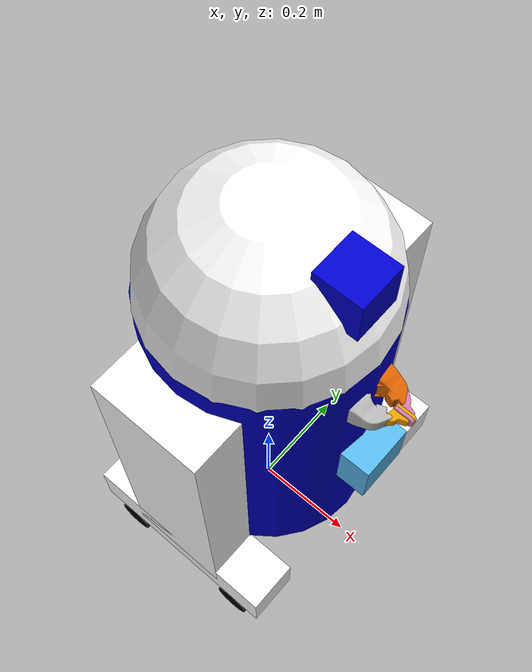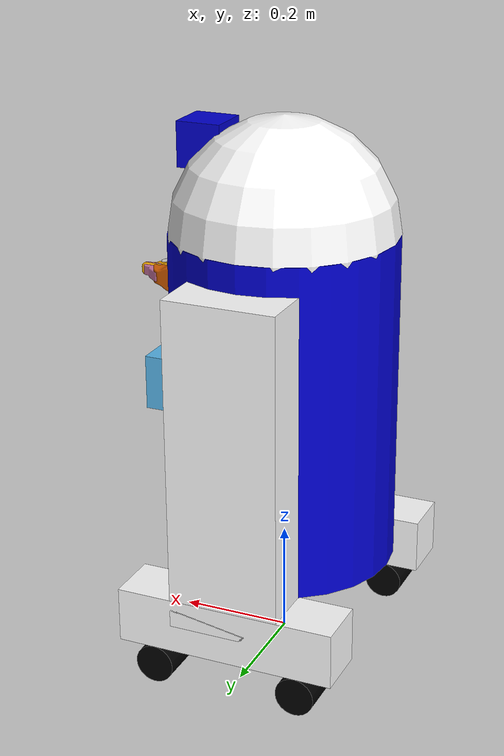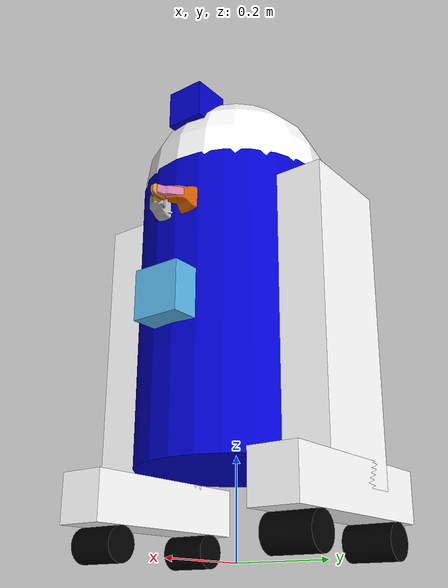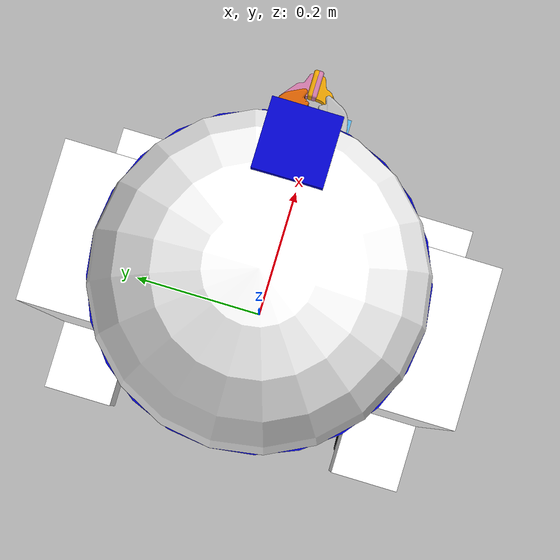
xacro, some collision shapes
<?xml version="1.0"?>
<robot xmlns:xacro="http://ros.org/wiki/xacro" name="r2d2">
	<!--
		This file loads a basic visualization of r2d2 and its structure
 	-->
	<xacro:include filename="$(find r2d2_description)/urdf/r2d2.structure.xacro" />

	<link name="base_link" />

	<xacro:r2d2_structure name="r2d2_structure" parent_link="base_link"/>

</robot>

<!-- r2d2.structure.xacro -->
<robot xmlns:xacro="http://ros.org/wiki/xacro">

	<xacro:include filename="$(find r2d2_description)/urdf/r2d2.gazebo.xacro" />
	<xacro:include filename="$(find r2d2_description)/urdf/r2d2.materials.xacro" />
	<xacro:include filename="$(find r2d2_description)/urdf/r2d2.inertia.xacro" />
	<xacro:include filename="$(find r2d2_description)/urdf/r2d2.head.xacro" />
	<xacro:include filename="$(find r2d2_description)/urdf/r2d2.leg.xacro" />
	<xacro:include filename="$(find r2d2_description)/urdf/r2d2.wheel.xacro" />
	<xacro:include filename="$(find r2d2_description)/urdf/r2d2.gripper.xacro" />
	<xacro:include filename="$(find r2d2_description)/urdf/r2d2.gripper_finger.xacro" />
	<xacro:include filename="$(find r2d2_description)/urdf/r2d2.laser.xacro" />

	<xacro:property name="torsowidth" value=".2" />
	<xacro:property name="leglen" value=".6" />
	<xacro:property name="polelen" value=".2" />
	<xacro:property name="torsolen" value=".6" />
	<xacro:property name="baselen" value=".4" />
	<xacro:property name="basewidth" value=".1" />
	<xacro:property name="wheeldiam" value=".07" />
	<xacro:property name="pi" value="3.1415" />

	<xacro:macro name="r2d2_structure" params="name parent_link">

		<link name="torso">
			<visual>
				<geometry>
					<cylinder radius="${torsowidth}" length="${torsolen}"/>
				</geometry>
				<material name="Blue"/>
			</visual>
			<collision>
				<geometry>
					<cylinder radius="${torsowidth}" length="${torsolen}"/>
				</geometry>
			</collision>
	 		<xacro:default_inertial mass="10"/>
		</link>
		<xacro:gazebo_material link="torso" color="Blue"/>

		<joint name="${parent_link}_torso_joint" type="fixed">
			<origin xyz="0 0 ${torsolen/2.0 + basewidth + wheeldiam}" rpy="0 0 0" />
			<parent link="${parent_link}" />
			<child link="torso" />
		</joint>

		<xacro:head name="head" parent_link="torso" />

		<xacro:leg name="leg" parent_link="torso" prefix="right" reflect="-1" />
		<xacro:leg name="leg" parent_link="torso" prefix="left" reflect="1" />

		<xacro:gripper name="gripper" parent_link="torso" />

		<xacro:laser name="hokuyo_laser" parent_link="torso" />

	</xacro:macro>

</robot>

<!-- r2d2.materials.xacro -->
<robot xmlns:xacro="http://ros.org/wiki/xacro">

	<material name="Black">
		<color rgba="0.0 0.0 0.0 1.0"/>
	</material>

	<material name="Blue">
		<color rgba="0.0 0.0 0.8 1.0"/>
	</material>

	<material name="Green">
		<color rgba="0.0 0.8 0.0 1.0"/>
	</material>

	<material name="Grey">
		<color rgba="0.7 0.7 0.7 1.0"/>
	</material>

	<material name="DarkGrey">
		<color rgba="0.3 0.3 0.3 1.0"/>
	</material>

	<material name="Red">
		<color rgba="0.8 0.0 0.0 1.0"/>
	</material>

	<material name="White">
		<color rgba="1.0 1.0 1.0 1.0"/>
	</material>

	<material name="Yellow">
		<color rgba="0.8 0.8 0.0 1.0"/>
	</material>

</robot>

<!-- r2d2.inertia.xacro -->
<robot xmlns:xacro="http://ros.org/wiki/xacro">

	<xacro:macro name="default_inertial" params="mass">
		<inertial>
			<mass value="${mass}" />
			<inertia ixx="1.0" ixy="0.0" ixz="0.0" iyy="1.0" iyz="0.0" izz="1.0" />
		</inertial>
	</xacro:macro>

</robot>

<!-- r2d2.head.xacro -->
<robot xmlns:xacro="http://ros.org/wiki/xacro">

	<xacro:macro name="head" params="name parent_link">

		<link name="head">
			<visual>
				<geometry>
					<sphere radius="${torsowidth}"/>
				</geometry>
				<material name="White"/>
			</visual>
			<collision>
				<geometry>
					<sphere radius="${torsowidth}"/>
				</geometry>
			</collision>
			<xacro:default_inertial mass="2"/>
		</link>
		<xacro:gazebo_material link="head" color="White"/>

		<link name="box">
			<visual>
				<geometry>
					<box size=".08 .08 .08"/>
				</geometry>
				<material name="Blue"/>
				<origin xyz="-0.04 0 0"/>
			</visual>
			<collision>
				<geometry>
					<box size=".08 .08 .08"/>
				</geometry>
			</collision>
			<xacro:default_inertial mass="1"/>
		</link>
		<xacro:gazebo_material link="box" color="Blue"/>

		<joint name="${parent_link}_head_joint" type="continuous">
			<parent link="${parent_link}"/>
			<child link="head"/>
			<axis xyz="0 0 1"/>
			<origin xyz="0 0 ${torsolen/2}"/>
			<limit effort="30" velocity="1.0"/>
			<dynamics damping="0.0" friction="0.0"/>
		</joint>

		<joint name="head_box_joint" type="fixed">
			<parent link="head"/>
			<child link="box"/>
			<origin xyz="${.707*torsowidth+0.04} 0 ${.707*torsowidth}"/>
		</joint>

		<!-- This block connects the ${parent_link}_head_joint to an actuator (motor), which informs both
		simulation and visualization of the robot -->
		<transmission name="head_trans" type="SimpleTransmission">
			<type>transmission_interface/SimpleTransmission</type>
			<joint name="${parent_link}_head_joint">
				<hardwareInterface>PositionJointInterface</hardwareInterface>
				<mechanicalReduction>1</mechanicalReduction>
			</joint>

			<actuator name="$head_swivel_motor">
				<hardwareInterface>EffortJointInterface</hardwareInterface>
				<mechanicalReduction>1</mechanicalReduction>
			</actuator>
		</transmission>

	</xacro:macro>

</robot>

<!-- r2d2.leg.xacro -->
<robot xmlns:xacro="http://ros.org/wiki/xacro">

	<xacro:macro name="leg" params="name parent_link prefix reflect">

		<link name="${prefix}_leg">
			<visual>
				<geometry>
					<box size="${leglen} .1 .2"/>
				</geometry>
				<origin xyz="0 0 -${leglen/2}" rpy="0 ${pi/2} 0"/>
				<material name="White"/>
			</visual>
			<collision>
				<geometry>
					<box size="${leglen} .1 .2"/>
				</geometry>
				<origin xyz="0 0 -${leglen/2}" rpy="0 ${pi/2} 0"/>
			</collision>
			<xacro:default_inertial mass="2"/>
		</link>
		<xacro:gazebo_material link="${prefix}_leg" color="White"/>

		<link name="${prefix}_leg_base">
			<visual>
				<geometry>
					<box size="${baselen} ${basewidth} ${basewidth}"/>
				</geometry>
				<material name="White"/>
			</visual>
			<collision>
				<geometry>
					<box size="${baselen} ${basewidth} ${basewidth}"/>
				</geometry>
			</collision>
			<xacro:default_inertial mass="20"/>
		</link>
		<xacro:gazebo_material link="${prefix}_leg_base" color="White"/>

		<joint name="${parent_link}_${prefix}_leg_joint" type="fixed">
			<parent link="${parent_link}"/>
			<child link="${prefix}_leg"/>
			<origin xyz="0 ${reflect*(torsowidth+.02)} .25" />
		</joint>

		<joint name="${prefix}_leg_leg_base_joint" type="fixed">
			<parent link="${prefix}_leg"/>
			<child link="${prefix}_leg_base"/>
			<origin xyz="0 0 ${-leglen}" />
		</joint>

		<xacro:wheel name="wheel" prefix="${prefix}" suffix="front" reflect="1"/>
		<xacro:wheel name="wheel" prefix="${prefix}" suffix="back" reflect="-1"/>

	</xacro:macro>

</robot>

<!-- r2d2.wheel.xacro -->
<robot xmlns:xacro="http://ros.org/wiki/xacro">

	<xacro:macro name="wheel" params="name prefix suffix reflect">

		<link name="${prefix}_${suffix}_wheel">
			<visual>
				<origin xyz="0 0 0" rpy="${pi/2} 0 0" />
				<geometry>
					<cylinder radius="${wheeldiam/2}" length="0.1"/>
				</geometry>
				<material name="Black"/>
				<origin xyz="0 0 0" rpy="0 0 0" />
			</visual>
			<collision>
				<origin xyz="0 0 0" rpy="${pi/2} 0 0" />
				<geometry>
					<cylinder radius="${wheeldiam/2}" length="0.1"/>
				</geometry>
				<origin xyz="0 0 0" rpy="0 0 0" />
			</collision>
			<xacro:default_inertial mass="2"/>
		</link>
		<xacro:gazebo_material link="${prefix}_${suffix}_wheel" color="Black"/>

		<joint name="${prefix}_${suffix}_wheel_joint" type="continuous">
			<axis xyz="0 1 0" rpy="0 0 0" />
			<parent link="${prefix}_leg_base"/>
			<child link="${prefix}_${suffix}_wheel"/>
			<origin xyz="${baselen*reflect/3} 0 -${wheeldiam/2+.05}" rpy="0 0 0"/>
		</joint>

		<!-- This block connects the wheel joint to an actuator (motor), which informs both
		simulation and visualization of the robot -->
		<transmission name="${prefix}_${suffix}_wheel_trans" type="SimpleTransmission">
			<type>transmission_interface/SimpleTransmission</type>
			<joint name="${prefix}_${suffix}_wheel_joint">
				<hardwareInterface>VelocityJointInterface</hardwareInterface>
				<mechanicalReduction>1</mechanicalReduction>
			</joint>

			<actuator name="${prefix}_${suffix}_wheel_motor">
				<hardwareInterface>EffortJointInterface</hardwareInterface>
				<mechanicalReduction>1</mechanicalReduction>
			</actuator>
		</transmission>

	</xacro:macro>

</robot>

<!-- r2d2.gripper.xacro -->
<robot xmlns:xacro="http://ros.org/wiki/xacro">

	<xacro:macro name="gripper" params="name parent_link">

		<link name="gripper_pole">
			<visual>
				<geometry>
					<cylinder length="${polelen}" radius=".01"/>
				</geometry>
				<material name="Grey"/>
				<origin xyz="${polelen/2} 0 0" rpy="0 ${pi/2} 0 "/>
			</visual>
			<collision>
				<geometry>
					<cylinder length="${polelen}" radius=".01"/>
				</geometry>
				<origin xyz="${polelen/2} 0 0" rpy="0 ${pi/2} 0 "/>
			</collision>
			<xacro:default_inertial mass=".05"/>
		</link>
		<xacro:gazebo_material link="gripper_pole" color="Grey"/>

		<joint name="${parent_link}_gripper_pole_joint" type="prismatic">
			<parent link="${parent_link}"/>
			<child link="gripper_pole"/>
			<limit effort="1000.0" lower="-${torsowidth*2-.02}" upper="-0.1" velocity="0.5"/>
			<origin rpy="0 0 0" xyz="${torsowidth-.01} 0 .2"/>
			<limit effort="30" velocity="0.2"/>
			<dynamics damping="0.0" friction="0.0"/>
		</joint>

		<transmission name="gripper_pole_trans" type="SimpleTransmission">
			<type>transmission_interface/SimpleTransmission</type>
			<joint name="${parent_link}_gripper_pole_joint">
				<hardwareInterface>PositionJointInterface</hardwareInterface>
				<mechanicalReduction>1</mechanicalReduction>
			</joint>

			<actuator name="gripper_pole_motor">
				<hardwareInterface>EffortJointInterface</hardwareInterface>
				<mechanicalReduction>1</mechanicalReduction>
			</actuator>
		</transmission>

		<xacro:gripper_finger name="gripper_finger" parent_link="gripper_pole" prefix="left" reflect="1" />
		<xacro:gripper_finger name="gripper_finger" parent_link="gripper_pole" prefix="right" reflect="-1" />

	</xacro:macro>

</robot>

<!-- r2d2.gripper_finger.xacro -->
<robot xmlns:xacro="http://ros.org/wiki/xacro">

	<xacro:macro name="gripper_finger" params="name parent_link prefix reflect">

		<link name="${prefix}_gripper_finger">
			<visual>
				<origin rpy="${(reflect-1)/2*pi} 0 0" xyz="0 0 0"/>
				<geometry>
					<mesh filename="package://pr2_description/meshes/gripper_v0/l_finger.dae"/>
				</geometry>
			</visual>
			<collision>
				<geometry>
					<mesh filename="package://pr2_description/meshes/gripper_v0/l_finger.dae"/>
				</geometry>
				<origin rpy="${(reflect-1)/2*pi} 0 0" xyz="0 0 0"/>
			</collision>
			<xacro:default_inertial mass=".05"/>
		</link>

		<link name="${prefix}_gripper_finger_tip">
			<visual>
				<origin rpy="${(reflect-1)/2*pi} 0 0" xyz="0.09137 0.00495 0"/>
				<geometry>
					<mesh filename="package://pr2_description/meshes/gripper_v0/l_finger_tip.dae"/>
				</geometry>
			</visual>
			<collision>
				<geometry>
					<mesh filename="package://pr2_description/meshes/gripper_v0/l_finger_tip.dae"/>
				</geometry>
				<origin rpy="${(reflect-1)/2*pi} 0 0" xyz="0.09137 0.00495 0"/>
			</collision>
			<xacro:default_inertial mass=".05"/>
		</link>

		<joint name="${prefix}_gripper_finger_joint" type="revolute">
			<axis xyz="0 0 ${reflect}"/>
			<limit effort="1000.0" lower="0.0" upper="0.548" velocity="0.5"/>
			<origin rpy="0 0 0" xyz="${polelen} ${reflect*0.01} 0"/>
			<parent link="${parent_link}"/>
			<child link="${prefix}_gripper_finger"/>
			<limit effort="30" velocity="1.0"/>
			<dynamics damping="0.0" friction="0.0"/>
		</joint>

		<joint name="${prefix}_gripper_finger_tip_joint" type="fixed">
			<parent link="${prefix}_gripper_finger"/>
			<child link="${prefix}_gripper_finger_tip"/>
		</joint>

		<transmission name="${prefix}_gripper_finger_trans" type="SimpleTransmission">
			<type>transmission_interface/SimpleTransmission</type>
			<joint name="${prefix}_gripper_finger_joint">
				<hardwareInterface>PositionJointInterface</hardwareInterface>
				<mechanicalReduction>1</mechanicalReduction>
			</joint>

			<actuator name="${prefix}_gripper_motor">
				<hardwareInterface>EffortJointInterface</hardwareInterface>
				<mechanicalReduction>1</mechanicalReduction>
			</actuator>
		</transmission>

	</xacro:macro>

</robot>

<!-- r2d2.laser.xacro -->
<robot xmlns:xacro="http://ros.org/wiki/xacro">

	<xacro:macro name="laser" params="name parent_link">

		<!-- Hokuyo Laser -->
		<link name="hokuyo_link">
			<visual>
				<geometry>
					<mesh filename="package://rrbot_description/meshes/hokuyo.dae"/>
				</geometry>
			</visual>
			<collision>
				<geometry>
					<box size="0.1 0.1 0.1"/>
				</geometry>
			</collision>
			<xacro:default_inertial mass="0.5"/>
		</link>

		<joint name="hokuyo_joint" type="fixed">
			<parent link="${parent_link}"/>
			<child link="hokuyo_link"/>
			<axis xyz="1 0 0" />
			<origin xyz="${torsowidth} 0 0" rpy="0 0 0"/>
		</joint>

	</xacro:macro>

</robot>
